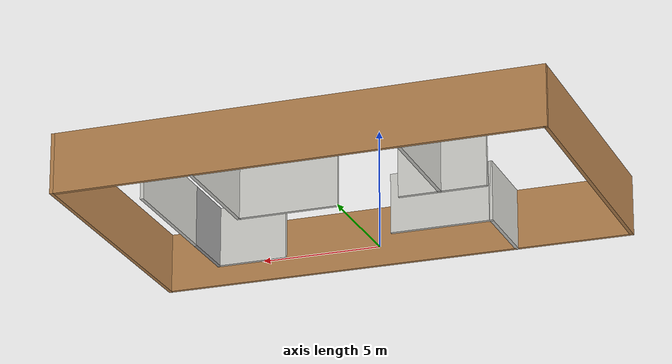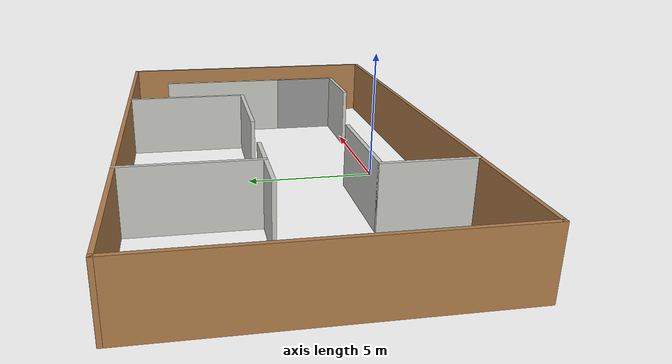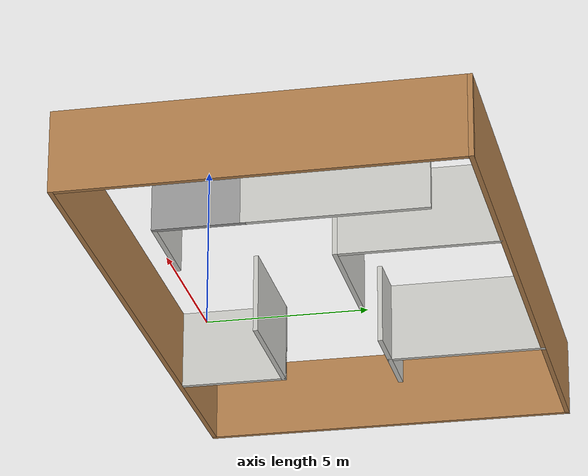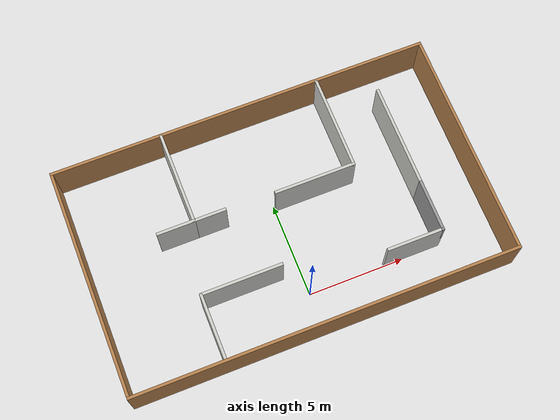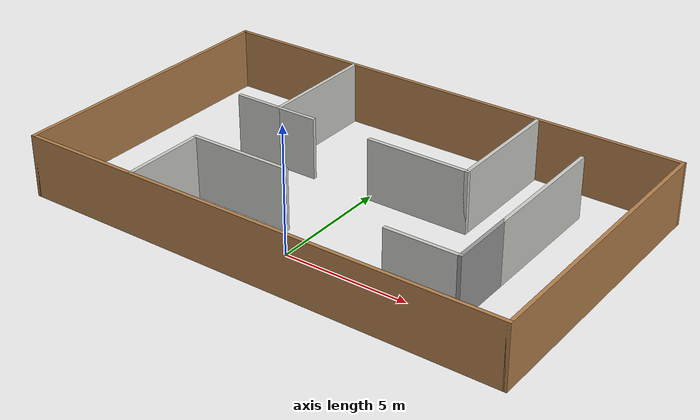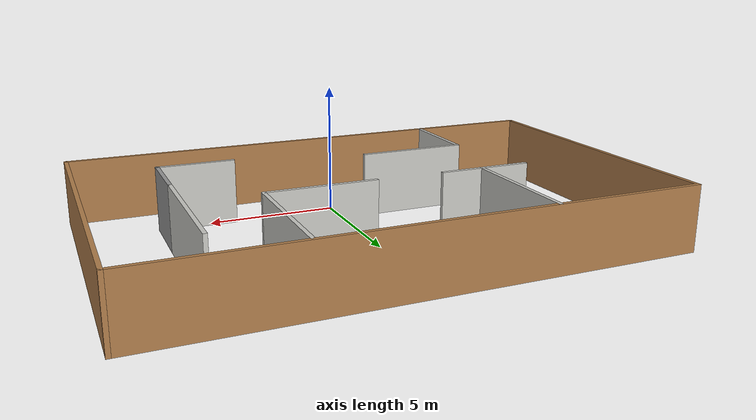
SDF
<?xml version='1.0'?>
<sdf version='1.6'>
  <model name='room_20x12'>
    <pose frame=''>0.045 3.835 0 0 -0 0</pose>
    <link name='Wall_0'>
      <collision name='Wall_0_Collision'>
        <geometry>
          <box>
            <size>20 0.15 2.5</size>
          </box>
        </geometry>
        <pose frame=''>0 0 1.25 0 -0 0</pose>
      </collision>
      <visual name='Wall_0_Visual'>
        <pose frame=''>0 0 1.25 0 -0 0</pose>
        <geometry>
          <box>
            <size>20 0.15 2.5</size>
          </box>
        </geometry>
        <material>
          <script>
            <uri>file://media/materials/scripts/gazebo.material</uri>
            <name>Gazebo/Wood</name>
          </script>
          <ambient>1 1 1 1</ambient>
        </material>
        <meta>
          <layer>0</layer>
        </meta>
      </visual>
      <pose frame=''>-0 -5.925 0 0 -0 0</pose>
    </link>
    <link name='Wall_10'>
      <collision name='Wall_10_Collision'>
        <geometry>
          <box>
            <size>4.25 0.15 2.5</size>
          </box>
        </geometry>
        <pose frame=''>0 0 1.25 0 -0 0</pose>
      </collision>
      <visual name='Wall_10_Visual'>
        <pose frame=''>0 0 1.25 0 -0 0</pose>
        <geometry>
          <box>
            <size>4.25 0.15 2.5</size>
          </box>
        </geometry>
        <material>
          <script>
            <uri>file://media/materials/scripts/gazebo.material</uri>
            <name>Gazebo/CeilingTiled</name>
          </script>
          <ambient>0.760784 0.662745 0.627451 1</ambient>
        </material>
        <meta>
          <layer>0</layer>
        </meta>
      </visual>
      <pose frame=''>2.10556 0.990035 0 0 -0 3.14159</pose>
    </link>
    <link name='Wall_12'>
      <collision name='Wall_12_Collision'>
        <geometry>
          <box>
            <size>5 0.15 2.5</size>
          </box>
        </geometry>
        <pose frame=''>0 0 1.25 0 -0 0</pose>
      </collision>
      <visual name='Wall_12_Visual'>
        <pose frame=''>0 0 1.25 0 -0 0</pose>
        <geometry>
          <box>
            <size>5 0.15 2.5</size>
          </box>
        </geometry>
        <material>
          <script>
            <uri>file://media/materials/scripts/gazebo.material</uri>
            <name>Gazebo/CeilingTiled</name>
          </script>
          <ambient>0.760784 0.662745 0.627451 1</ambient>
        </material>
        <meta>
          <layer>0</layer>
        </meta>
      </visual>
      <pose frame=''>-4.21169 3.49549 0 0 -0 -1.5708</pose>
    </link>
    <link name='Wall_13'>
      <collision name='Wall_13_Collision'>
        <geometry>
          <box>
            <size>2 0.15 2.5</size>
          </box>
        </geometry>
        <pose frame=''>0 0 1.25 0 -0 0</pose>
      </collision>
      <visual name='Wall_13_Visual'>
        <pose frame=''>0 0 1.25 0 -0 0</pose>
        <geometry>
          <box>
            <size>2 0.15 2.5</size>
          </box>
        </geometry>
        <material>
          <script>
            <uri>file://media/materials/scripts/gazebo.material</uri>
            <name>Gazebo/CeilingTiled</name>
          </script>
          <ambient>0.760784 0.662745 0.627451 1</ambient>
        </material>
        <meta>
          <layer>0</layer>
        </meta>
      </visual>
      <pose frame=''>-5.13669 1.07049 0 0 -0 3.14159</pose>
    </link>
    <link name='Wall_15'>
      <collision name='Wall_15_Collision'>
        <geometry>
          <box>
            <size>1.75 0.15 2.5</size>
          </box>
        </geometry>
        <pose frame=''>0 0 1.25 0 -0 0</pose>
      </collision>
      <visual name='Wall_15_Visual'>
        <pose frame=''>0 0 1.25 0 -0 0</pose>
        <geometry>
          <box>
            <size>1.75 0.15 2.5</size>
          </box>
        </geometry>
        <material>
          <script>
            <uri>file://media/materials/scripts/gazebo.material</uri>
            <name>Gazebo/CeilingTiled</name>
          </script>
          <ambient>0.760784 0.662745 0.627451 1</ambient>
        </material>
        <meta>
          <layer>0</layer>
        </meta>
      </visual>
      <pose frame=''>-3.41169 1.07049 0 0 -0 0</pose>
    </link>
    <link name='Wall_17'>
      <collision name='Wall_17_Collision'>
        <geometry>
          <box>
            <size>3 0.15 2.5</size>
          </box>
        </geometry>
        <pose frame=''>0 0 1.25 0 -0 0</pose>
      </collision>
      <visual name='Wall_17_Visual'>
        <pose frame=''>0 0 1.25 0 -0 0</pose>
        <geometry>
          <box>
            <size>3 0.15 2.5</size>
          </box>
        </geometry>
        <material>
          <script>
            <uri>file://media/materials/scripts/gazebo.material</uri>
            <name>Gazebo/CeilingTiled</name>
          </script>
          <ambient>0.760784 0.662745 0.627451 1</ambient>
        </material>
        <meta>
          <layer>0</layer>
        </meta>
      </visual>
      <pose frame=''>5.43976 -3.73403 0 0 -0 0</pose>
    </link>
    <link name='Wall_18'>
      <collision name='Wall_18_Collision'>
        <geometry>
          <box>
            <size>2.75 0.15 2.5</size>
          </box>
        </geometry>
        <pose frame=''>0 0 1.25 0 -0 0</pose>
      </collision>
      <visual name='Wall_18_Visual'>
        <pose frame=''>0 0 1.25 0 -0 0</pose>
        <geometry>
          <box>
            <size>2.75 0.15 2.5</size>
          </box>
        </geometry>
        <material>
          <script>
            <uri>file://media/materials/scripts/gazebo.material</uri>
            <name>Gazebo/Grey</name>
          </script>
          <ambient>1 1 1 1</ambient>
        </material>
        <meta>
          <layer>0</layer>
        </meta>
      </visual>
      <pose frame=''>6.86476 -2.43403 0 0 -0 1.5708</pose>
    </link>
    <link name='Wall_2'>
      <collision name='Wall_2_Collision'>
        <geometry>
          <box>
            <size>12 0.15 2.5</size>
          </box>
        </geometry>
        <pose frame=''>0 0 1.25 0 -0 0</pose>
      </collision>
      <visual name='Wall_2_Visual'>
        <pose frame=''>0 0 1.25 0 -0 0</pose>
        <geometry>
          <box>
            <size>12 0.15 2.5</size>
          </box>
        </geometry>
        <material>
          <script>
            <uri>file://media/materials/scripts/gazebo.material</uri>
            <name>Gazebo/Wood</name>
          </script>
          <ambient>1 1 1 1</ambient>
        </material>
        <meta>
          <layer>0</layer>
        </meta>
      </visual>
      <pose frame=''>9.925 0 0 0 -0 1.5708</pose>
    </link>
    <link name='Wall_20'>
      <collision name='Wall_20_Collision'>
        <geometry>
          <box>
            <size>5.5 0.15 2.5</size>
          </box>
        </geometry>
        <pose frame=''>0 0 1.25 0 -0 0</pose>
      </collision>
      <visual name='Wall_20_Visual'>
        <pose frame=''>0 0 1.25 0 -0 0</pose>
        <geometry>
          <box>
            <size>5.5 0.15 2.5</size>
          </box>
        </geometry>
        <material>
          <script>
            <uri>file://media/materials/scripts/gazebo.material</uri>
            <name>Gazebo/CeilingTiled</name>
          </script>
          <ambient>0.760784 0.662745 0.627451 1</ambient>
        </material>
        <meta>
          <layer>0</layer>
        </meta>
      </visual>
      <pose frame=''>6.86476 1.54097 0 0 -0 1.5708</pose>
    </link>
    <link name='Wall_3'>
      <collision name='Wall_3_Collision'>
        <geometry>
          <box>
            <size>20 0.15 2.5</size>
          </box>
        </geometry>
        <pose frame=''>0 0 1.25 0 -0 0</pose>
      </collision>
      <visual name='Wall_3_Visual'>
        <pose frame=''>0 0 1.25 0 -0 0</pose>
        <geometry>
          <box>
            <size>20 0.15 2.5</size>
          </box>
        </geometry>
        <material>
          <script>
            <uri>file://media/materials/scripts/gazebo.material</uri>
            <name>Gazebo/Wood</name>
          </script>
          <ambient>1 1 1 1</ambient>
        </material>
        <meta>
          <layer>0</layer>
        </meta>
      </visual>
      <pose frame=''>-0 5.925 0 0 -0 3.14159</pose>
    </link>
    <link name='Wall_4'>
      <collision name='Wall_4_Collision'>
        <geometry>
          <box>
            <size>12 0.15 2.5</size>
          </box>
        </geometry>
        <pose frame=''>0 0 1.25 0 -0 0</pose>
      </collision>
      <visual name='Wall_4_Visual'>
        <pose frame=''>0 0 1.25 0 -0 0</pose>
        <geometry>
          <box>
            <size>12 0.15 2.5</size>
          </box>
        </geometry>
        <material>
          <script>
            <uri>file://media/materials/scripts/gazebo.material</uri>
            <name>Gazebo/Wood</name>
          </script>
          <ambient>1 1 1 1</ambient>
        </material>
        <meta>
          <layer>0</layer>
        </meta>
      </visual>
      <pose frame=''>-9.925 0 0 0 -0 -1.5708</pose>
    </link>
    <link name='Wall_6'>
      <collision name='Wall_6_Collision'>
        <geometry>
          <box>
            <size>3.5 0.15 2.5</size>
          </box>
        </geometry>
        <pose frame=''>0 0 1.25 0 -0 0</pose>
      </collision>
      <visual name='Wall_6_Visual'>
        <pose frame=''>0 0 1.25 0 -0 0</pose>
        <geometry>
          <box>
            <size>3.5 0.15 2.5</size>
          </box>
        </geometry>
        <material>
          <script>
            <uri>file://media/materials/scripts/gazebo.material</uri>
            <name>Gazebo/CeilingTiled</name>
          </script>
          <ambient>0.760784 0.662745 0.627451 1</ambient>
        </material>
        <meta>
          <layer>0</layer>
        </meta>
      </visual>
      <pose frame=''>-5.15703 -4.21118 0 0 -0 1.5708</pose>
    </link>
    <link name='Wall_7'>
      <collision name='Wall_7_Collision'>
        <geometry>
          <box>
            <size>4.25 0.15 2.5</size>
          </box>
        </geometry>
        <pose frame=''>0 0 1.25 0 -0 0</pose>
      </collision>
      <visual name='Wall_7_Visual'>
        <pose frame=''>0 0 1.25 0 -0 0</pose>
        <geometry>
          <box>
            <size>4.25 0.15 2.5</size>
          </box>
        </geometry>
        <material>
          <script>
            <uri>file://media/materials/scripts/gazebo.material</uri>
            <name>Gazebo/CeilingTiled</name>
          </script>
          <ambient>0.760784 0.662745 0.627451 1</ambient>
        </material>
        <meta>
          <layer>0</layer>
        </meta>
      </visual>
      <pose frame=''>-3.10703 -2.53618 0 0 -0 0</pose>
    </link>
    <link name='Wall_9'>
      <collision name='Wall_9_Collision'>
        <geometry>
          <box>
            <size>5 0.15 2.5</size>
          </box>
        </geometry>
        <pose frame=''>0 0 1.25 0 -0 0</pose>
      </collision>
      <visual name='Wall_9_Visual'>
        <pose frame=''>0 0 1.25 0 -0 0</pose>
        <geometry>
          <box>
            <size>5 0.15 2.5</size>
          </box>
        </geometry>
        <material>
          <script>
            <uri>file://media/materials/scripts/gazebo.material</uri>
            <name>Gazebo/CeilingTiled</name>
          </script>
          <ambient>0.760784 0.662745 0.627451 1</ambient>
        </material>
        <meta>
          <layer>0</layer>
        </meta>
      </visual>
      <pose frame=''>4.15556 3.41503 0 0 -0 -1.5708</pose>
    </link>
    <static>1</static>
  </model>
</sdf>
